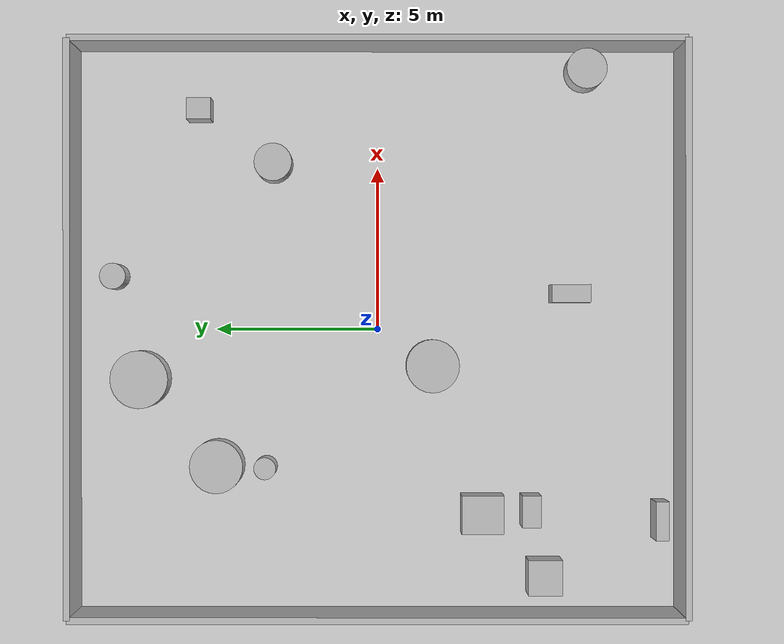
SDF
<?xml version="1.0"?>
<sdf version="1.6">
  <world name="env_43">

    <include><uri>model://ground_plane</uri></include>
    <include><uri>model://sun</uri></include>

    <!-- WALLS -->
    <model name="wall_north"><static>true</static><pose>0 9.34815549644722 1 0 0 0</pose>
      <link name="link"><collision name="collision">
        <geometry><box><size>17.513751028198534 0.2 2</size></box></geometry>
      </collision><visual name="visual">
        <geometry><box><size>17.513751028198534 0.2 2</size></box></geometry>
      </visual></link>
    </model>

    <model name="wall_south"><static>true</static><pose>0 -9.34815549644722 1 0 0 0</pose>
      <link name="link"><collision name="collision">
        <geometry><box><size>17.513751028198534 0.2 2</size></box></geometry>
      </collision><visual name="visual">
        <geometry><box><size>17.513751028198534 0.2 2</size></box></geometry>
      </visual></link>
    </model>

    <model name="wall_east"><static>true</static><pose>8.756875514099267 0 1 0 0 1.57</pose>
      <link name="link"><collision name="collision">
        <geometry><box><size>18.69631099289444 0.2 2</size></box></geometry>
      </collision><visual name="visual">
        <geometry><box><size>18.69631099289444 0.2 2</size></box></geometry>
      </visual></link>
    </model>

    <model name="wall_west"><static>true</static><pose>-8.756875514099267 0 1 0 0 1.57</pose>
      <link name="link"><collision name="collision">
        <geometry><box><size>18.69631099289444 0.2 2</size></box></geometry>
      </collision><visual name="visual">
        <geometry><box><size>18.69631099289444 0.2 2</size></box></geometry>
      </visual></link>
    </model>

    <!-- SENSOR -->

    <model name="lidar_sensor">
      <static>true</static>
      <pose>-5.235536359914416 -4.18560914917986 0.4 0 0 0</pose>
      <link name="link">
        <sensor name="lidar" type="ray">
          <pose>0 0 0 0 0 0</pose>
          <visualize>true</visualize>
          <always_on>true</always_on>
          <update_rate>10</update_rate>
          <ray>
            <scan><horizontal>
              <samples>720</samples>
              <resolution>1</resolution>
              <min_angle>-3.14159</min_angle>
              <max_angle>3.14159</max_angle>
            </horizontal></scan>
            <range><min>0.15</min><max>20.0</max><resolution>0.01</resolution></range>
          </ray>
          <plugin name="lidar_plugin" filename="liblidar_plugin.so"/>
        </sensor>
      </link>
    </model>

    <!-- OBSTACLES -->

    <model name="obstacle_0">
      <static>true</static>
      <pose>7.99165951714599 -6.4242163029509705 0.5 0 0 0</pose>
      <link name="link">
        <collision name="collision">
          <geometry><cylinder><radius>0.62</radius><length>1.0</length></cylinder></geometry>
        </collision>
        <visual name="visual">
          <geometry><cylinder><radius>0.62</radius><length>1.0</length></cylinder></geometry>
        </visual>
      </link>
    </model>

    <model name="obstacle_1">
      <static>true</static>
      <pose>-4.269950686644341 3.4595516053760758 0.5 0 0 0</pose>
      <link name="link">
        <collision name="collision">
          <geometry><cylinder><radius>0.34</radius><length>1.0</length></cylinder></geometry>
        </collision>
        <visual name="visual">
          <geometry><cylinder><radius>0.34</radius><length>1.0</length></cylinder></geometry>
        </visual>
      </link>
    </model>

    <model name="obstacle_2">
      <static>true</static>
      <pose>6.774415013414252 5.488428691271119 0.5 0 0 0</pose>
      <link name="link">
        <collision name="collision">
          <geometry><box><size>0.67 0.74 1.0</size></box></geometry>
        </collision>
        <visual name="visual">
          <geometry><box><size>0.67 0.74 1.0</size></box></geometry>
        </visual>
      </link>
    </model>

    <model name="obstacle_3">
      <static>true</static>
      <pose>-5.590745051509341 -4.725560417473283 0.5 0 0 0</pose>
      <link name="link">
        <collision name="collision">
          <geometry><box><size>0.98 0.58 1.0</size></box></geometry>
        </collision>
        <visual name="visual">
          <geometry><box><size>0.98 0.58 1.0</size></box></geometry>
        </visual>
      </link>
    </model>

    <model name="obstacle_4">
      <static>true</static>
      <pose>1.0936897284356526 -5.94468950861515 0.5 0 0 0</pose>
      <link name="link">
        <collision name="collision">
          <geometry><box><size>0.56 1.2 1.0</size></box></geometry>
        </collision>
        <visual name="visual">
          <geometry><box><size>0.56 1.2 1.0</size></box></geometry>
        </visual>
      </link>
    </model>

    <model name="obstacle_5">
      <static>true</static>
      <pose>-5.885579577244243 -8.732452816545617 0.5 0 0 0</pose>
      <link name="link">
        <collision name="collision">
          <geometry><box><size>1.2 0.41 1.0</size></box></geometry>
        </collision>
        <visual name="visual">
          <geometry><box><size>1.2 0.41 1.0</size></box></geometry>
        </visual>
      </link>
    </model>

    <model name="obstacle_6">
      <static>true</static>
      <pose>-5.696464053787132 -3.22847964756149 0.5 0 0 0</pose>
      <link name="link">
        <collision name="collision">
          <geometry><box><size>1.19 1.3 1.0</size></box></geometry>
        </collision>
        <visual name="visual">
          <geometry><box><size>1.19 1.3 1.0</size></box></geometry>
        </visual>
      </link>
    </model>

    <model name="obstacle_7">
      <static>true</static>
      <pose>-7.626930494807833 -5.1487780926667615 0.5 0 0 0</pose>
      <link name="link">
        <collision name="collision">
          <geometry><box><size>1.08 1.05 1.0</size></box></geometry>
        </collision>
        <visual name="visual">
          <geometry><box><size>1.08 1.05 1.0</size></box></geometry>
        </visual>
      </link>
    </model>

    <model name="obstacle_8">
      <static>true</static>
      <pose>-4.217808712213849 4.951901236111993 0.5 0 0 0</pose>
      <link name="link">
        <collision name="collision">
          <geometry><cylinder><radius>0.82</radius><length>1.0</length></cylinder></geometry>
        </collision>
        <visual name="visual">
          <geometry><cylinder><radius>0.82</radius><length>1.0</length></cylinder></geometry>
        </visual>
      </link>
    </model>

    <model name="obstacle_9">
      <static>true</static>
      <pose>-1.1345444379786755 -1.6950041675122245 0.5 0 0 0</pose>
      <link name="link">
        <collision name="collision">
          <geometry><cylinder><radius>0.82</radius><length>1.0</length></cylinder></geometry>
        </collision>
        <visual name="visual">
          <geometry><cylinder><radius>0.82</radius><length>1.0</length></cylinder></geometry>
        </visual>
      </link>
    </model>

    <model name="obstacle_10">
      <static>true</static>
      <pose>1.6339072208931746 8.1237754979493 0.5 0 0 0</pose>
      <link name="link">
        <collision name="collision">
          <geometry><cylinder><radius>0.4</radius><length>1.0</length></cylinder></geometry>
        </collision>
        <visual name="visual">
          <geometry><cylinder><radius>0.4</radius><length>1.0</length></cylinder></geometry>
        </visual>
      </link>
    </model>

    <model name="obstacle_11">
      <static>true</static>
      <pose>-1.5423074125976761 7.318952988080689 0.5 0 0 0</pose>
      <link name="link">
        <collision name="collision">
          <geometry><cylinder><radius>0.89</radius><length>1.0</length></cylinder></geometry>
        </collision>
        <visual name="visual">
          <geometry><cylinder><radius>0.89</radius><length>1.0</length></cylinder></geometry>
        </visual>
      </link>
    </model>

    <model name="obstacle_12">
      <static>true</static>
      <pose>5.12937551027623 3.209448668030813 0.5 0 0 0</pose>
      <link name="link">
        <collision name="collision">
          <geometry><cylinder><radius>0.58</radius><length>1.0</length></cylinder></geometry>
        </collision>
        <visual name="visual">
          <geometry><cylinder><radius>0.58</radius><length>1.0</length></cylinder></geometry>
        </visual>
      </link>
    </model>

  </world>
</sdf>
